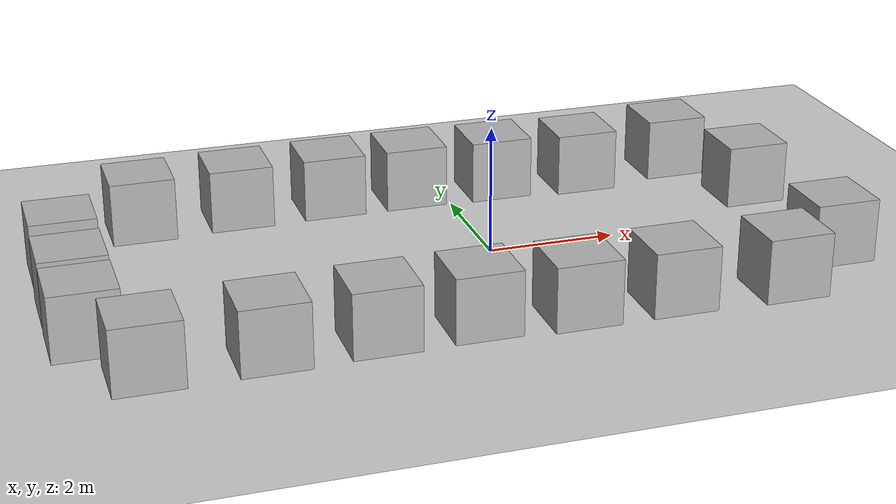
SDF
<sdf version='1.10'>
  <world name='empty'>
    <spherical_coordinates>
      <surface_model>EARTH_WGS84</surface_model>
      <latitude_deg>37.427500000000002</latitude_deg>
      <longitude_deg>-122.16970000000001</longitude_deg>
      <elevation>30</elevation>
      <heading_deg>0</heading_deg>
    </spherical_coordinates>
    <physics name='1ms' type='ignored'>
      <max_step_size>0.001</max_step_size>
      <real_time_factor>1</real_time_factor>
      <real_time_update_rate>1000</real_time_update_rate>
    </physics>
    <plugin name='gz::sim::systems::Physics' filename='gz-sim-physics-system'/>
    <plugin name='gz::sim::systems::UserCommands' filename='gz-sim-user-commands-system'/>
    <plugin name='gz::sim::systems::SceneBroadcaster' filename='gz-sim-scene-broadcaster-system'/>
    <plugin name='gz::sim::systems::Sensors' filename='gz-sim-sensors-system'>
      <render_engine>ogre2</render_engine>
    </plugin>
    <plugin name='gz::sim::systems::Contact' filename='gz-sim-contact-system'/>
    <gravity>0 0 -9.8000000000000007</gravity>
    <magnetic_field>5.5644999999999998e-06 2.2875799999999999e-05 -4.2388400000000002e-05</magnetic_field>
    <atmosphere type='adiabatic'/>
    <scene>
      <ambient>0.400000006 0.400000006 0.400000006 1</ambient>
      <background>0.699999988 0.699999988 0.699999988 1</background>
      <shadows>true</shadows>
    </scene>
    <model name='ground_plane'>
      <static>true</static>
      <link name='link'>
        <collision name='collision'>
          <geometry>
            <plane>
              <normal>0 0 1</normal>
              <size>100 100</size>
            </plane>
          </geometry>
          <surface>
            <friction>
              <ode/>
            </friction>
            <bounce/>
            <contact/>
          </surface>
        </collision>
        <visual name='visual'>
          <geometry>
            <plane>
              <normal>0 0 1</normal>
              <size>100 100</size>
            </plane>
          </geometry>
          <material>
            <ambient>0.800000012 0.800000012 0.800000012 1</ambient>
            <diffuse>0.800000012 0.800000012 0.800000012 1</diffuse>
            <specular>0.800000012 0.800000012 0.800000012 1</specular>
          </material>
        </visual>
        <pose>0 0 0 0 0 0</pose>
        <inertial>
          <pose>0 0 0 0 0 0</pose>
          <mass>1</mass>
          <inertia>
            <ixx>1</ixx>
            <ixy>0</ixy>
            <ixz>0</ixz>
            <iyy>1</iyy>
            <iyz>0</iyz>
            <izz>1</izz>
          </inertia>
        </inertial>
        <enable_wind>false</enable_wind>
      </link>
      <pose>0 0 0 0 0 0</pose>
      <self_collide>false</self_collide>
    </model>

    <model name='box'>
      <pose>-4.0099987756015265 -2.4941785945454793 0.49999999990199806 6.2287739151293738e-22 9.3279666454713669e-22 -3.6315533669320137e-22</pose>
      <link name='box_link'>
        <inertial>
          <inertia>
            <ixx>0.16666</ixx>
            <ixy>0</ixy>
            <ixz>0</ixz>
            <iyy>0.16666</iyy>
            <iyz>0</iyz>
            <izz>0.16666</izz>
          </inertia>
          <mass>1</mass>
          <pose>0 0 0 0 0 0</pose>
        </inertial>
        <collision name='box_collision'>
          <geometry>
            <box>
              <size>1 1 1</size>
            </box>
          </geometry>
          <surface>
            <friction>
              <ode/>
            </friction>
            <bounce/>
            <contact/>
          </surface>
        </collision>
        <visual name='box_visual'>
          <geometry>
            <box>
              <size>1 1 1</size>
            </box>
          </geometry>
          <material>
            <ambient>0.300000012 0.300000012 0.300000012 1</ambient>
            <diffuse>0.699999988 0.699999988 0.699999988 1</diffuse>
            <specular>1 1 1 1</specular>
          </material>
        </visual>
        <pose>0 0 0 0 0 0</pose>
        <enable_wind>false</enable_wind>
      </link>
      <static>false</static>
      <self_collide>false</self_collide>
    </model>
    <model name='box_1'>
      <pose>-2.4558538997993242 -2.4430070281533851 0.49999999990199806 -8.5189348373204123e-22 1.817857541294396e-21 9.246246142765725e-23</pose>
      <link name='box_link'>
        <inertial>
          <inertia>
            <ixx>0.16666</ixx>
            <ixy>0</ixy>
            <ixz>0</ixz>
            <iyy>0.16666</iyy>
            <iyz>0</iyz>
            <izz>0.16666</izz>
          </inertia>
          <mass>1</mass>
        </inertial>
        <collision name='box_collision'>
          <geometry>
            <box>
              <size>1 1 1</size>
            </box>
          </geometry>
          <surface>
            <friction>
              <ode/>
            </friction>
            <bounce/>
            <contact/>
          </surface>
        </collision>
        <visual name='box_visual'>
          <geometry>
            <box>
              <size>1 1 1</size>
            </box>
          </geometry>
          <material>
            <ambient>0.300000012 0.300000012 0.300000012 1</ambient>
            <diffuse>0.699999988 0.699999988 0.699999988 1</diffuse>
            <specular>1 1 1 1</specular>
          </material>
        </visual>
      </link>
      <static>false</static>
      <self_collide>false</self_collide>
    </model>
    <model name='box_2'>
      <pose>-0.98851226683441551 -2.4152841822080928 0.49999999990199806 -8.5189348373204123e-22 1.817857541294396e-21 9.246246142765725e-23</pose>
      <link name='box_link'>
        <inertial>
          <inertia>
            <ixx>0.16666</ixx>
            <ixy>0</ixy>
            <ixz>0</ixz>
            <iyy>0.16666</iyy>
            <iyz>0</iyz>
            <izz>0.16666</izz>
          </inertia>
          <mass>1</mass>
        </inertial>
        <collision name='box_collision'>
          <geometry>
            <box>
              <size>1 1 1</size>
            </box>
          </geometry>
          <surface>
            <friction>
              <ode/>
            </friction>
            <bounce/>
            <contact/>
          </surface>
        </collision>
        <visual name='box_visual'>
          <geometry>
            <box>
              <size>1 1 1</size>
            </box>
          </geometry>
          <material>
            <ambient>0.300000012 0.300000012 0.300000012 1</ambient>
            <diffuse>0.699999988 0.699999988 0.699999988 1</diffuse>
            <specular>1 1 1 1</specular>
          </material>
        </visual>
      </link>
      <static>false</static>
      <self_collide>false</self_collide>
    </model>
    <model name='box_3'>
      <pose>0.45561872894076738 -2.4964828836069586 0.49999999990199806 -8.5189348373204123e-22 1.817857541294396e-21 9.246246142765725e-23</pose>
      <link name='box_link'>
        <inertial>
          <inertia>
            <ixx>0.16666</ixx>
            <ixy>0</ixy>
            <ixz>0</ixz>
            <iyy>0.16666</iyy>
            <iyz>0</iyz>
            <izz>0.16666</izz>
          </inertia>
          <mass>1</mass>
        </inertial>
        <collision name='box_collision'>
          <geometry>
            <box>
              <size>1 1 1</size>
            </box>
          </geometry>
          <surface>
            <friction>
              <ode/>
            </friction>
            <bounce/>
            <contact/>
          </surface>
        </collision>
        <visual name='box_visual'>
          <geometry>
            <box>
              <size>1 1 1</size>
            </box>
          </geometry>
          <material>
            <ambient>0.300000012 0.300000012 0.300000012 1</ambient>
            <diffuse>0.699999988 0.699999988 0.699999988 1</diffuse>
            <specular>1 1 1 1</specular>
          </material>
        </visual>
      </link>
      <static>false</static>
      <self_collide>false</self_collide>
    </model>
    <model name='box_4'>
      <pose>1.9406601055600015 -2.4901195695164637 0.49999999990199806 -8.5189348373204123e-22 1.817857541294396e-21 9.246246142765725e-23</pose>
      <link name='box_link'>
        <inertial>
          <inertia>
            <ixx>0.16666</ixx>
            <ixy>0</ixy>
            <ixz>0</ixz>
            <iyy>0.16666</iyy>
            <iyz>0</iyz>
            <izz>0.16666</izz>
          </inertia>
          <mass>1</mass>
        </inertial>
        <collision name='box_collision'>
          <geometry>
            <box>
              <size>1 1 1</size>
            </box>
          </geometry>
          <surface>
            <friction>
              <ode/>
            </friction>
            <bounce/>
            <contact/>
          </surface>
        </collision>
        <visual name='box_visual'>
          <geometry>
            <box>
              <size>1 1 1</size>
            </box>
          </geometry>
          <material>
            <ambient>0.300000012 0.300000012 0.300000012 1</ambient>
            <diffuse>0.699999988 0.699999988 0.699999988 1</diffuse>
            <specular>1 1 1 1</specular>
          </material>
        </visual>
      </link>
      <static>false</static>
      <self_collide>false</self_collide>
    </model>
    <model name='box_5'>
      <pose>3.6844037878323368 -2.5434563189218027 0.49999999990199806 -8.5189348373204123e-22 1.817857541294396e-21 9.246246142765725e-23</pose>
      <link name='box_link'>
        <inertial>
          <inertia>
            <ixx>0.16666</ixx>
            <ixy>0</ixy>
            <ixz>0</ixz>
            <iyy>0.16666</iyy>
            <iyz>0</iyz>
            <izz>0.16666</izz>
          </inertia>
          <mass>1</mass>
        </inertial>
        <collision name='box_collision'>
          <geometry>
            <box>
              <size>1 1 1</size>
            </box>
          </geometry>
          <surface>
            <friction>
              <ode/>
            </friction>
            <bounce/>
            <contact/>
          </surface>
        </collision>
        <visual name='box_visual'>
          <geometry>
            <box>
              <size>1 1 1</size>
            </box>
          </geometry>
          <material>
            <ambient>0.300000012 0.300000012 0.300000012 1</ambient>
            <diffuse>0.699999988 0.699999988 0.699999988 1</diffuse>
            <specular>1 1 1 1</specular>
          </material>
        </visual>
      </link>
      <static>false</static>
      <self_collide>false</self_collide>
    </model>
    <model name='box_6'>
      <pose>4.0051061969608428 2.5431447350715812 0.49999999990199806 -8.5189348373204123e-22 1.817857541294396e-21 9.246246142765725e-23</pose>
      <link name='box_link'>
        <inertial>
          <inertia>
            <ixx>0.16666</ixx>
            <ixy>0</ixy>
            <ixz>0</ixz>
            <iyy>0.16666</iyy>
            <iyz>0</iyz>
            <izz>0.16666</izz>
          </inertia>
          <mass>1</mass>
        </inertial>
        <collision name='box_collision'>
          <geometry>
            <box>
              <size>1 1 1</size>
            </box>
          </geometry>
          <surface>
            <friction>
              <ode/>
            </friction>
            <bounce/>
            <contact/>
          </surface>
        </collision>
        <visual name='box_visual'>
          <geometry>
            <box>
              <size>1 1 1</size>
            </box>
          </geometry>
          <material>
            <ambient>0.300000012 0.300000012 0.300000012 1</ambient>
            <diffuse>0.699999988 0.699999988 0.699999988 1</diffuse>
            <specular>1 1 1 1</specular>
          </material>
        </visual>
      </link>
      <static>false</static>
      <self_collide>false</self_collide>
    </model>
    <model name='box_7'>
      <pose>2.3177024950234779 2.350295152687103 0.49999999990199806 -8.5189348373204123e-22 1.817857541294396e-21 9.246246142765725e-23</pose>
      <link name='box_link'>
        <inertial>
          <inertia>
            <ixx>0.16666</ixx>
            <ixy>0</ixy>
            <ixz>0</ixz>
            <iyy>0.16666</iyy>
            <iyz>0</iyz>
            <izz>0.16666</izz>
          </inertia>
          <mass>1</mass>
        </inertial>
        <collision name='box_collision'>
          <geometry>
            <box>
              <size>1 1 1</size>
            </box>
          </geometry>
          <surface>
            <friction>
              <ode/>
            </friction>
            <bounce/>
            <contact/>
          </surface>
        </collision>
        <visual name='box_visual'>
          <geometry>
            <box>
              <size>1 1 1</size>
            </box>
          </geometry>
          <material>
            <ambient>0.300000012 0.300000012 0.300000012 1</ambient>
            <diffuse>0.699999988 0.699999988 0.699999988 1</diffuse>
            <specular>1 1 1 1</specular>
          </material>
        </visual>
      </link>
      <static>false</static>
      <self_collide>false</self_collide>
    </model>
    <model name='box_8'>
      <pose>0.86717625947844645 2.4573003792774948 0.49999999990199806 -8.5189348373204123e-22 1.817857541294396e-21 9.246246142765725e-23</pose>
      <link name='box_link'>
        <inertial>
          <inertia>
            <ixx>0.16666</ixx>
            <ixy>0</ixy>
            <ixz>0</ixz>
            <iyy>0.16666</iyy>
            <iyz>0</iyz>
            <izz>0.16666</izz>
          </inertia>
          <mass>1</mass>
        </inertial>
        <collision name='box_collision'>
          <geometry>
            <box>
              <size>1 1 1</size>
            </box>
          </geometry>
          <surface>
            <friction>
              <ode/>
            </friction>
            <bounce/>
            <contact/>
          </surface>
        </collision>
        <visual name='box_visual'>
          <geometry>
            <box>
              <size>1 1 1</size>
            </box>
          </geometry>
          <material>
            <ambient>0.300000012 0.300000012 0.300000012 1</ambient>
            <diffuse>0.699999988 0.699999988 0.699999988 1</diffuse>
            <specular>1 1 1 1</specular>
          </material>
        </visual>
      </link>
      <static>false</static>
      <self_collide>false</self_collide>
    </model>
    <model name='box_9'>
      <pose>-0.56620894362858676 2.5109235709944642 0.49999999990199806 3.8774289469585197e-21 9.3636464166676973e-22 -3.3915799387576866e-22</pose>
      <link name='box_link'>
        <inertial>
          <inertia>
            <ixx>0.16666</ixx>
            <ixy>0</ixy>
            <ixz>0</ixz>
            <iyy>0.16666</iyy>
            <iyz>0</iyz>
            <izz>0.16666</izz>
          </inertia>
          <mass>1</mass>
        </inertial>
        <collision name='box_collision'>
          <geometry>
            <box>
              <size>1 1 1</size>
            </box>
          </geometry>
          <surface>
            <friction>
              <ode/>
            </friction>
            <bounce/>
            <contact/>
          </surface>
        </collision>
        <visual name='box_visual'>
          <geometry>
            <box>
              <size>1 1 1</size>
            </box>
          </geometry>
          <material>
            <ambient>0.300000012 0.300000012 0.300000012 1</ambient>
            <diffuse>0.699999988 0.699999988 0.699999988 1</diffuse>
            <specular>1 1 1 1</specular>
          </material>
        </visual>
      </link>
      <static>false</static>
      <self_collide>false</self_collide>
    </model>
    <model name='box_10'>
      <pose>-1.9276606649462591 2.5118808212513812 0.49999999990199806 5.298044374016043e-21 2.1045552205776118e-21 -8.8038169245196245e-22</pose>
      <link name='box_link'>
        <inertial>
          <inertia>
            <ixx>0.16666</ixx>
            <ixy>0</ixy>
            <ixz>0</ixz>
            <iyy>0.16666</iyy>
            <iyz>0</iyz>
            <izz>0.16666</izz>
          </inertia>
          <mass>1</mass>
        </inertial>
        <collision name='box_collision'>
          <geometry>
            <box>
              <size>1 1 1</size>
            </box>
          </geometry>
          <surface>
            <friction>
              <ode/>
            </friction>
            <bounce/>
            <contact/>
          </surface>
        </collision>
        <visual name='box_visual'>
          <geometry>
            <box>
              <size>1 1 1</size>
            </box>
          </geometry>
          <material>
            <ambient>0.300000012 0.300000012 0.300000012 1</ambient>
            <diffuse>0.699999988 0.699999988 0.699999988 1</diffuse>
            <specular>1 1 1 1</specular>
          </material>
        </visual>
      </link>
      <static>false</static>
      <self_collide>false</self_collide>
    </model>
    <model name='box_11'>
      <pose>-3.4372855294296412 2.4834216614547797 0.49999999990199806 -8.5189348373204123e-22 1.817857541294396e-21 9.246246142765725e-23</pose>
      <link name='box_link'>
        <inertial>
          <inertia>
            <ixx>0.16666</ixx>
            <ixy>0</ixy>
            <ixz>0</ixz>
            <iyy>0.16666</iyy>
            <iyz>0</iyz>
            <izz>0.16666</izz>
          </inertia>
          <mass>1</mass>
        </inertial>
        <collision name='box_collision'>
          <geometry>
            <box>
              <size>1 1 1</size>
            </box>
          </geometry>
          <surface>
            <friction>
              <ode/>
            </friction>
            <bounce/>
            <contact/>
          </surface>
        </collision>
        <visual name='box_visual'>
          <geometry>
            <box>
              <size>1 1 1</size>
            </box>
          </geometry>
          <material>
            <ambient>0.300000012 0.300000012 0.300000012 1</ambient>
            <diffuse>0.699999988 0.699999988 0.699999988 1</diffuse>
            <specular>1 1 1 1</specular>
          </material>
        </visual>
      </link>
      <static>false</static>
      <self_collide>false</self_collide>
    </model>
    <model name='box_12'>
      <pose>-4.9937321234136629 2.4271319585029261 0.49999999990199806 -8.5189348373204123e-22 1.817857541294396e-21 9.246246142765725e-23</pose>
      <link name='box_link'>
        <inertial>
          <inertia>
            <ixx>0.16666</ixx>
            <ixy>0</ixy>
            <ixz>0</ixz>
            <iyy>0.16666</iyy>
            <iyz>0</iyz>
            <izz>0.16666</izz>
          </inertia>
          <mass>1</mass>
        </inertial>
        <collision name='box_collision'>
          <geometry>
            <box>
              <size>1 1 1</size>
            </box>
          </geometry>
          <surface>
            <friction>
              <ode/>
            </friction>
            <bounce/>
            <contact/>
          </surface>
        </collision>
        <visual name='box_visual'>
          <geometry>
            <box>
              <size>1 1 1</size>
            </box>
          </geometry>
          <material>
            <ambient>0.300000012 0.300000012 0.300000012 1</ambient>
            <diffuse>0.699999988 0.699999988 0.699999988 1</diffuse>
            <specular>1 1 1 1</specular>
          </material>
        </visual>
      </link>
      <static>false</static>
      <self_collide>false</self_collide>
    </model>
    <model name='box_13'>
      <pose>-5.7210378213613575 -2.5266588529183518 0.49999999990199806 -8.5189348373204123e-22 1.817857541294396e-21 9.246246142765725e-23</pose>
      <link name='box_link'>
        <inertial>
          <inertia>
            <ixx>0.16666</ixx>
            <ixy>0</ixy>
            <ixz>0</ixz>
            <iyy>0.16666</iyy>
            <iyz>0</iyz>
            <izz>0.16666</izz>
          </inertia>
          <mass>1</mass>
        </inertial>
        <collision name='box_collision'>
          <geometry>
            <box>
              <size>1 1 1</size>
            </box>
          </geometry>
          <surface>
            <friction>
              <ode/>
            </friction>
            <bounce/>
            <contact/>
          </surface>
        </collision>
        <visual name='box_visual'>
          <geometry>
            <box>
              <size>1 1 1</size>
            </box>
          </geometry>
          <material>
            <ambient>0.300000012 0.300000012 0.300000012 1</ambient>
            <diffuse>0.699999988 0.699999988 0.699999988 1</diffuse>
            <specular>1 1 1 1</specular>
          </material>
        </visual>
      </link>
      <static>false</static>
      <self_collide>false</self_collide>
    </model>
    <model name='box_14'>
      <pose>-6.3643273223769095 -1.3086594604862758 0.49999999990199806 -8.5189348373204123e-22 1.817857541294396e-21 9.246246142765725e-23</pose>
      <link name='box_link'>
        <inertial>
          <inertia>
            <ixx>0.16666</ixx>
            <ixy>0</ixy>
            <ixz>0</ixz>
            <iyy>0.16666</iyy>
            <iyz>0</iyz>
            <izz>0.16666</izz>
          </inertia>
          <mass>1</mass>
        </inertial>
        <collision name='box_collision'>
          <geometry>
            <box>
              <size>1 1 1</size>
            </box>
          </geometry>
          <surface>
            <friction>
              <ode/>
            </friction>
            <bounce/>
            <contact/>
          </surface>
        </collision>
        <visual name='box_visual'>
          <geometry>
            <box>
              <size>1 1 1</size>
            </box>
          </geometry>
          <material>
            <ambient>0.300000012 0.300000012 0.300000012 1</ambient>
            <diffuse>0.699999988 0.699999988 0.699999988 1</diffuse>
            <specular>1 1 1 1</specular>
          </material>
        </visual>
      </link>
      <static>false</static>
      <self_collide>false</self_collide>
    </model>
    <model name='box_15'>
      <pose>-6.3346401425165446 1.2218359207793825 0.49999999990199806 -8.5189348373204123e-22 1.817857541294396e-21 9.246246142765725e-23</pose>
      <link name='box_link'>
        <inertial>
          <inertia>
            <ixx>0.16666</ixx>
            <ixy>0</ixy>
            <ixz>0</ixz>
            <iyy>0.16666</iyy>
            <iyz>0</iyz>
            <izz>0.16666</izz>
          </inertia>
          <mass>1</mass>
        </inertial>
        <collision name='box_collision'>
          <geometry>
            <box>
              <size>1 1 1</size>
            </box>
          </geometry>
          <surface>
            <friction>
              <ode/>
            </friction>
            <bounce/>
            <contact/>
          </surface>
        </collision>
        <visual name='box_visual'>
          <geometry>
            <box>
              <size>1 1 1</size>
            </box>
          </geometry>
          <material>
            <ambient>0.300000012 0.300000012 0.300000012 1</ambient>
            <diffuse>0.699999988 0.699999988 0.699999988 1</diffuse>
            <specular>1 1 1 1</specular>
          </material>
        </visual>
      </link>
      <static>false</static>
      <self_collide>false</self_collide>
    </model>
    <model name='box_16'>
      <pose>-6.3583803505737437 -0.14831333271406311 0.49999999990199806 -8.5189348373204123e-22 1.817857541294396e-21 9.246246142765725e-23</pose>
      <link name='box_link'>
        <inertial>
          <inertia>
            <ixx>0.16666</ixx>
            <ixy>0</ixy>
            <ixz>0</ixz>
            <iyy>0.16666</iyy>
            <iyz>0</iyz>
            <izz>0.16666</izz>
          </inertia>
          <mass>1</mass>
        </inertial>
        <collision name='box_collision'>
          <geometry>
            <box>
              <size>1 1 1</size>
            </box>
          </geometry>
          <surface>
            <friction>
              <ode/>
            </friction>
            <bounce/>
            <contact/>
          </surface>
        </collision>
        <visual name='box_visual'>
          <geometry>
            <box>
              <size>1 1 1</size>
            </box>
          </geometry>
          <material>
            <ambient>0.300000012 0.300000012 0.300000012 1</ambient>
            <diffuse>0.699999988 0.699999988 0.699999988 1</diffuse>
            <specular>1 1 1 1</specular>
          </material>
        </visual>
      </link>
      <static>false</static>
      <self_collide>false</self_collide>
    </model>
    <model name='box_17'>
      <pose>4.7483251845389178 0.99969961501448923 0.49999999990199806 -8.5189348373204123e-22 1.817857541294396e-21 9.246246142765725e-23</pose>
      <link name='box_link'>
        <inertial>
          <inertia>
            <ixx>0.16666</ixx>
            <ixy>0</ixy>
            <ixz>0</ixz>
            <iyy>0.16666</iyy>
            <iyz>0</iyz>
            <izz>0.16666</izz>
          </inertia>
          <mass>1</mass>
        </inertial>
        <collision name='box_collision'>
          <geometry>
            <box>
              <size>1 1 1</size>
            </box>
          </geometry>
          <surface>
            <friction>
              <ode/>
            </friction>
            <bounce/>
            <contact/>
          </surface>
        </collision>
        <visual name='box_visual'>
          <geometry>
            <box>
              <size>1 1 1</size>
            </box>
          </geometry>
          <material>
            <ambient>0.300000012 0.300000012 0.300000012 1</ambient>
            <diffuse>0.699999988 0.699999988 0.699999988 1</diffuse>
            <specular>1 1 1 1</specular>
          </material>
        </visual>
      </link>
      <static>false</static>
      <self_collide>false</self_collide>
    </model>
    <model name='box_18'>
      <pose>4.9440874497236322 -1.6122222201276786 0.49999999990199806 -4.5736263620782325e-22 2.5359455957348232e-21 -5.6508402564172058e-22</pose>
      <link name='box_link'>
        <inertial>
          <inertia>
            <ixx>0.16666</ixx>
            <ixy>0</ixy>
            <ixz>0</ixz>
            <iyy>0.16666</iyy>
            <iyz>0</iyz>
            <izz>0.16666</izz>
          </inertia>
          <mass>1</mass>
        </inertial>
        <collision name='box_collision'>
          <geometry>
            <box>
              <size>1 1 1</size>
            </box>
          </geometry>
          <surface>
            <friction>
              <ode/>
            </friction>
            <bounce/>
            <contact/>
          </surface>
        </collision>
        <visual name='box_visual'>
          <geometry>
            <box>
              <size>1 1 1</size>
            </box>
          </geometry>
          <material>
            <ambient>0.300000012 0.300000012 0.300000012 1</ambient>
            <diffuse>0.699999988 0.699999988 0.699999988 1</diffuse>
            <specular>1 1 1 1</specular>
          </material>
        </visual>
      </link>
      <static>false</static>
      <self_collide>false</self_collide>
    </model>
    <light name='sun' type='directional'>
      <pose>0 0 10 0 0 0</pose>
      <cast_shadows>true</cast_shadows>
      <intensity>1</intensity>
      <direction>-0.5 0.10000000000000001 -0.90000000000000002</direction>
      <diffuse>0.800000012 0.800000012 0.800000012 1</diffuse>
      <specular>0.200000003 0.200000003 0.200000003 1</specular>
      <attenuation>
        <range>1000</range>
        <linear>0.01</linear>
        <constant>0.90000000000000002</constant>
        <quadratic>0.001</quadratic>
      </attenuation>
      <spot>
        <inner_angle>0</inner_angle>
        <outer_angle>0</outer_angle>
        <falloff>0</falloff>
      </spot>
    </light>
  </world>
</sdf>
